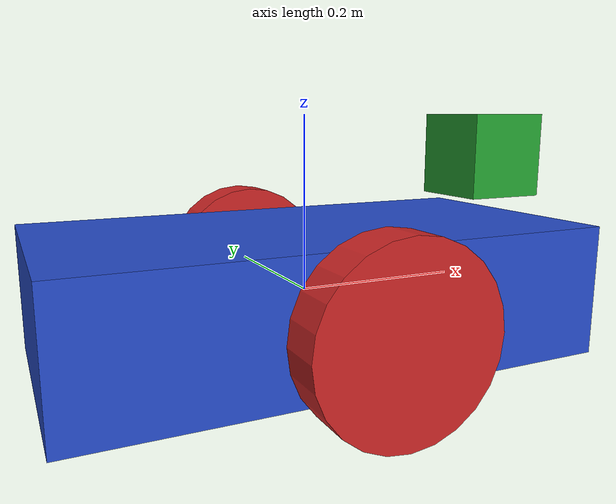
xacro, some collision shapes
<?xml version='1.0'?>

<robot name="my_robot" xmlns:xacro="http://www.ros.org/wiki/xacro">

<xacro:include filename="$(find my_robot)/urdf/my_robot.gazebo" />

  <link name="robot_footprint"></link>

  <joint name="robot_footprint_joint" type="fixed">
    <origin xyz="0 0 0" rpy="0 0 0" />
    <parent link="robot_footprint"/>
    <child link="chassis" />
  </joint>

  <link name='chassis'>
    <pose>0 0 0.1 0 0 0</pose>

    <inertial>
      <mass value="15.0"/>
      <origin xyz="0.0 0 0" rpy=" 0 0 0"/>
      <inertia
          ixx="0.1" ixy="0" ixz="0"
          iyy="0.1" iyz="0"
          izz="0.1"
      />
    </inertial>

    <collision name='collision'>
      <origin xyz="0 0 0" rpy=" 0 0 0"/>
      <geometry>
        <box size=".6 .3 .15"/>
      </geometry>
    </collision>

    <visual name='chassis_visual'>
      <origin xyz="0 0 0" rpy=" 0 0 0"/>
      <geometry>
        <box size=".6 .3 .15"/>
      </geometry>
    </visual>

    <collision name='back_caster_collision'>
      <origin xyz="-0.15 0 -0.05" rpy=" 0 0 0"/>
      <geometry>
        <sphere radius="0.0499"/>
      </geometry>
    </collision>

    <visual name='back_caster_visual'>
      <origin xyz="-0.15 0 -0.05" rpy=" 0 0 0"/>
      <geometry>
        <sphere radius="0.05"/>
      </geometry>
    </visual>

    <collision name='front_caster_collision'>
      <origin xyz="0.15 0 -0.05" rpy=" 0 0 0"/>
      <geometry>
        <sphere radius="0.0499"/>
      </geometry>
    </collision>

    <visual name='front_caster_visual'>
      <origin xyz="0.15 0 -0.05" rpy=" 0 0 0"/>
      <geometry>
        <sphere radius="0.05"/>
      </geometry>
    </visual>

  </link>

  <link name='left_wheel'>

    <inertial>
      <mass value="5.0"/>
      <origin xyz="0 0 0" rpy="0 1.5707 1.5707"/>
      <inertia
          ixx="0.1" ixy="0" ixz="0"
          iyy="0.1" iyz="0"
          izz="0.1"
      />
    </inertial>

    <collision name='left_wheel_collision'>
      <origin xyz="0 0 0" rpy="0 1.5707 1.5707"/>
      <geometry>
        <cylinder radius=".1" length=".05"/>
      </geometry>
    </collision>

    <visual name='left_wheel_visual'>
      <origin xyz="0 0 0" rpy="0 1.5707 1.5707"/>
      <geometry>
        <cylinder radius=".1" length=".05"/>
      </geometry>
    </visual>

  </link>

<link name='right_wheel'>

    <inertial>
      <mass value="5.0"/>
      <origin xyz="0 0 0" rpy="0 1.5707 1.5707"/>
      <inertia
          ixx="0.1" ixy="0" ixz="0"
          iyy="0.1" iyz="0"
          izz="0.1"
      />
    </inertial>

    <collision name='right_wheel_collision'>
      <origin xyz="0 0 0" rpy="0 1.5707 1.5707"/>
      <geometry>
        <cylinder radius=".1" length=".05"/>
      </geometry>
    </collision>

    <visual name='right_wheel_visual'>
      <origin xyz="0 0 0" rpy="0 1.5707 1.5707"/>
      <geometry>
        <cylinder radius=".1" length=".05"/>
      </geometry>
    </visual>

  </link>

  <joint type="continuous" name="left_wheel_hinge">
    <origin xyz="0 0.2 0" rpy="0 0 0"/>
    <child link="left_wheel"/>
    <parent link="chassis"/>
    <axis xyz="0 1 0" rpy="0 0 0"/>
    <limit effort="10000" velocity="1000"/>
    <dynamics damping="1.0" friction="1.0"/>
  </joint>

  <joint type="continuous" name="right_wheel_hinge">
    <origin xyz="0 -0.2 0" rpy="0 0 0"/>
    <child link="right_wheel"/>
    <parent link="chassis"/>
    <axis xyz="0 1 0" rpy="0 0 0"/>
    <limit effort="10000" velocity="1000"/>
    <dynamics damping="1.0" friction="1.0"/>
  </joint>

  <link name='camera'>

  <box_inertia m="0.1" x="0.05" y="0.05" z="0.05" />

    <collision name='camera_collision'>
      <origin xyz="0 0 0" rpy=" 0 0 0"/>
      <geometry>
        <box size=".05 .05 .05"/>
      </geometry>
    </collision>

    <visual name='camera_visual'>
      <origin xyz="0 0 0" rpy=" 0 0 0"/>
      <geometry>
        <box size=".05 .05 .05"/>
      </geometry>
    </visual>
  </link>

  <joint type="fixed" name="camera_joint">
    <origin xyz="0.3 0 0" rpy="0 0 0"/>
    <child link="camera"/>
    <parent link="chassis"/>
  </joint>

  <link name='hokuyo'>

    <inertial>
      <mass value="1e-5"/>
      <inertia
          ixx="1e-6" ixy="0" ixz="0"
          iyy="1e-6" iyz="0"
          izz="1e-6"
      />
    </inertial>

    <collision name='hokuyo_collision'>
      <origin xyz="0 0 0" rpy=" 0 0 0"/>
      <geometry>
        <box size=".1 .1 .1"/>
      </geometry>
    </collision>

    <visual name='hokuyo_visual'>
      <origin xyz="0 0 0" rpy=" 0 0 0"/>
      <geometry>
        <mesh filename="package://my_robot/meshes/hokuyo.dae"/>
      </geometry>
    </visual>
  </link>

  <joint type="fixed" name="hokuyo_joint">
    <origin xyz="0.25 0 .15" rpy="0 0 0"/>
    <child link="hokuyo"/>
    <parent link="chassis"/>
  </joint>

  <joint name="camera_optical_joint" type="fixed">
    <origin xyz="0 0 0" rpy="-1.5707 0 -1.5707"/>
    <parent link="camera"/>
    <child link="camera_link_optical"/>
  </joint>

  <link name="camera_link_optical">
  </link>

</robot>
